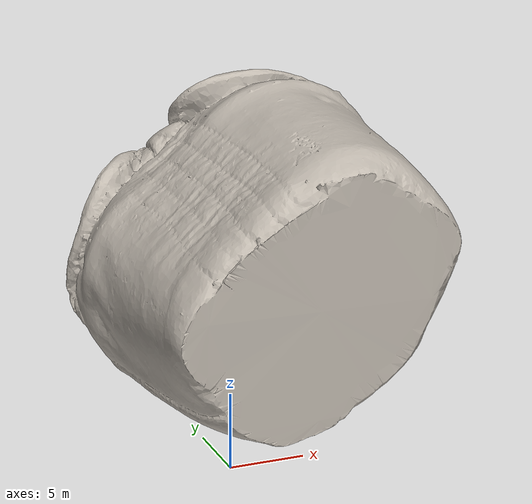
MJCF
<mujoco model="1c4018d8e86e476f8afc631396460629">
  <default>
    <default class="visual">
      <geom group="2" type="mesh" contype="0" conaffinity="0"/>
    </default>
    <default class="collision">
      <geom group="3" type="mesh"/>
    </default>
  </default>
  <asset>
    <texture type="2d" name="Matara_Low_Model_4_u1_v1" file="Matara_Low_Model_4_u1_v1.png"/>
    <material name="Matara_Low_Model_4_u1_v1" texture="Matara_Low_Model_4_u1_v1" specular="0.4000000000000001" shininess="0.001"/>
    <mesh file="1c4018d8e86e476f8afc631396460629.obj"/>
    <mesh file="1c4018d8e86e476f8afc631396460629_collision_0.obj"/>
    <mesh file="1c4018d8e86e476f8afc631396460629_collision_1.obj"/>
    <mesh file="1c4018d8e86e476f8afc631396460629_collision_2.obj"/>
    <mesh file="1c4018d8e86e476f8afc631396460629_collision_3.obj"/>
    <mesh file="1c4018d8e86e476f8afc631396460629_collision_4.obj"/>
    <mesh file="1c4018d8e86e476f8afc631396460629_collision_5.obj"/>
    <mesh file="1c4018d8e86e476f8afc631396460629_collision_6.obj"/>
    <mesh file="1c4018d8e86e476f8afc631396460629_collision_7.obj"/>
    <mesh file="1c4018d8e86e476f8afc631396460629_collision_8.obj"/>
    <mesh file="1c4018d8e86e476f8afc631396460629_collision_9.obj"/>
    <mesh file="1c4018d8e86e476f8afc631396460629_collision_10.obj"/>
    <mesh file="1c4018d8e86e476f8afc631396460629_collision_11.obj"/>
    <mesh file="1c4018d8e86e476f8afc631396460629_collision_12.obj"/>
    <mesh file="1c4018d8e86e476f8afc631396460629_collision_13.obj"/>
    <mesh file="1c4018d8e86e476f8afc631396460629_collision_14.obj"/>
    <mesh file="1c4018d8e86e476f8afc631396460629_collision_15.obj"/>
    <mesh file="1c4018d8e86e476f8afc631396460629_collision_16.obj"/>
    <mesh file="1c4018d8e86e476f8afc631396460629_collision_17.obj"/>
    <mesh file="1c4018d8e86e476f8afc631396460629_collision_18.obj"/>
    <mesh file="1c4018d8e86e476f8afc631396460629_collision_19.obj"/>
    <mesh file="1c4018d8e86e476f8afc631396460629_collision_20.obj"/>
    <mesh file="1c4018d8e86e476f8afc631396460629_collision_21.obj"/>
    <mesh file="1c4018d8e86e476f8afc631396460629_collision_22.obj"/>
    <mesh file="1c4018d8e86e476f8afc631396460629_collision_23.obj"/>
  </asset>
  <worldbody>
    <body name="1c4018d8e86e476f8afc631396460629">
      <freejoint/>
      <geom material="Matara_Low_Model_4_u1_v1" mesh="1c4018d8e86e476f8afc631396460629" class="visual"/>
      <geom mesh="1c4018d8e86e476f8afc631396460629_collision_0" rgba="0.46615441218146203 0.409015276552118 0.3611623751487433 1" class="collision"/>
      <geom mesh="1c4018d8e86e476f8afc631396460629_collision_1" rgba="0.6604387358286913 0.2793759997034786 0.41879804085582095 1" class="collision"/>
      <geom mesh="1c4018d8e86e476f8afc631396460629_collision_2" rgba="0.7398903242324257 0.03373790786228181 0.9294674581784772 1" class="collision"/>
      <geom mesh="1c4018d8e86e476f8afc631396460629_collision_3" rgba="0.6847473348618445 0.3148415378660179 0.15874303332350603 1" class="collision"/>
      <geom mesh="1c4018d8e86e476f8afc631396460629_collision_4" rgba="0.84422711877056 0.04987857198578971 0.6982986195215916 1" class="collision"/>
      <geom mesh="1c4018d8e86e476f8afc631396460629_collision_5" rgba="0.8484811994191401 0.12049569165925922 0.41401174461062706 1" class="collision"/>
      <geom mesh="1c4018d8e86e476f8afc631396460629_collision_6" rgba="0.17414378563669908 0.15489986842282877 0.5505518816998264 1" class="collision"/>
      <geom mesh="1c4018d8e86e476f8afc631396460629_collision_7" rgba="0.6899052729895571 0.40141782713453933 0.30713977033253403 1" class="collision"/>
      <geom mesh="1c4018d8e86e476f8afc631396460629_collision_8" rgba="0.9500665315251337 0.09022227614341372 0.8799609701317361 1" class="collision"/>
      <geom mesh="1c4018d8e86e476f8afc631396460629_collision_9" rgba="0.5595560339212277 0.7028441698895951 0.9754403179498935 1" class="collision"/>
      <geom mesh="1c4018d8e86e476f8afc631396460629_collision_10" rgba="0.4960718780286545 0.2619304516053679 0.8899654303981903 1" class="collision"/>
      <geom mesh="1c4018d8e86e476f8afc631396460629_collision_11" rgba="0.8945914614913056 0.6900186341958824 0.3997518735463993 1" class="collision"/>
      <geom mesh="1c4018d8e86e476f8afc631396460629_collision_12" rgba="0.2672124645701879 0.5900393752435645 0.006202249818984762 1" class="collision"/>
      <geom mesh="1c4018d8e86e476f8afc631396460629_collision_13" rgba="0.8555692853332023 0.8030073920148274 0.06310966100756688 1" class="collision"/>
      <geom mesh="1c4018d8e86e476f8afc631396460629_collision_14" rgba="0.21362562665796636 0.2815075744628319 0.5329840779136354 1" class="collision"/>
      <geom mesh="1c4018d8e86e476f8afc631396460629_collision_15" rgba="0.7217668847680156 0.06280935246424946 0.8370143202099999 1" class="collision"/>
      <geom mesh="1c4018d8e86e476f8afc631396460629_collision_16" rgba="0.3693446653794247 0.2383541114687575 0.3776622751568727 1" class="collision"/>
      <geom mesh="1c4018d8e86e476f8afc631396460629_collision_17" rgba="0.5470263474557098 0.8632644544754893 0.584797727901723 1" class="collision"/>
      <geom mesh="1c4018d8e86e476f8afc631396460629_collision_18" rgba="0.37320731696216813 0.7358773054838499 0.7822148429676581 1" class="collision"/>
      <geom mesh="1c4018d8e86e476f8afc631396460629_collision_19" rgba="0.36988408619044144 0.9881584984734728 0.40849034878906465 1" class="collision"/>
      <geom mesh="1c4018d8e86e476f8afc631396460629_collision_20" rgba="0.4461227485916881 0.3627766882153044 0.504739511238903 1" class="collision"/>
      <geom mesh="1c4018d8e86e476f8afc631396460629_collision_21" rgba="0.9766951431670939 0.9277678716340699 0.027766619734168496 1" class="collision"/>
      <geom mesh="1c4018d8e86e476f8afc631396460629_collision_22" rgba="0.24287977252279225 0.09296766840910575 0.9772244698756914 1" class="collision"/>
      <geom mesh="1c4018d8e86e476f8afc631396460629_collision_23" rgba="0.1536504832250566 0.9493364588096291 0.3534276993301768 1" class="collision"/>
    </body>
  </worldbody>
</mujoco>
